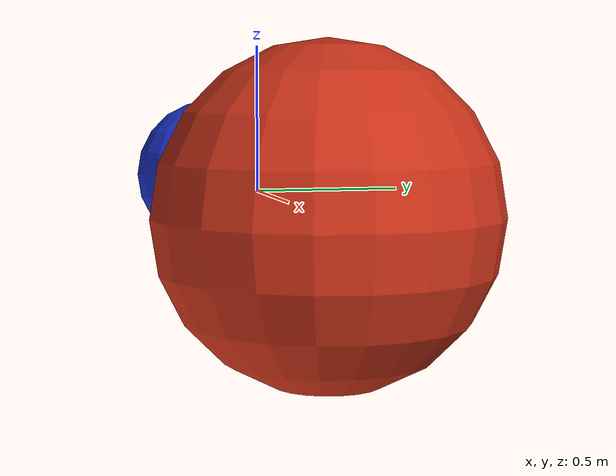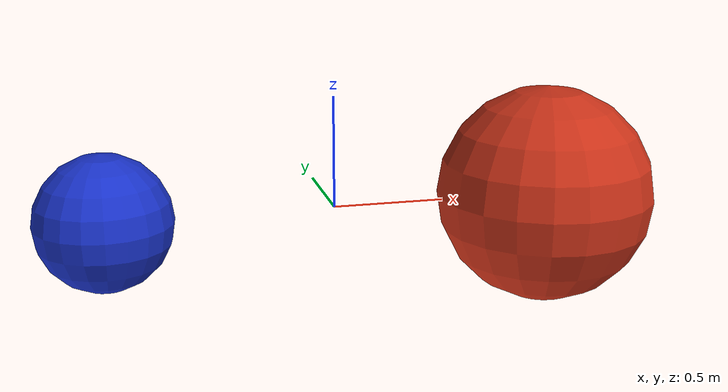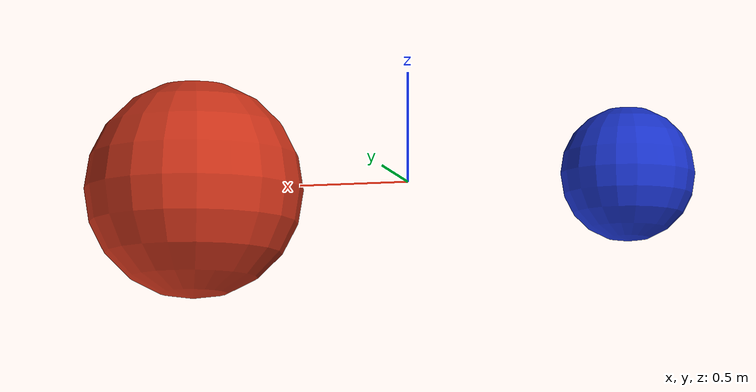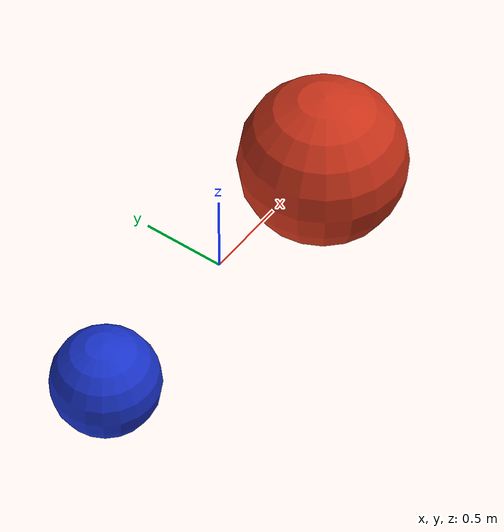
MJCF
<mujoco>
    <option gravity="0 0 0"/>

    <worldbody>
        <light diffuse=".5 .5 .5" pos="0 0 3" dir="0 0 -1"/>
        <body name="sphere1" pos="1 0 0">
            <joint type="free"/>
            <geom type="sphere" size="0.5" mass="5.0" rgba=".8 .2 .1 1"/>
        </body>
        <body name="sphere2" pos="-1 0 0">
            <joint type="free"/>
            <geom type="sphere" size="0.3" mass="3.0" rgba=".1 .2 .8 1"/>
        </body>
    </worldbody>

    <custom>
        <numeric name="G" data="6.67430e-11"/>
    </custom>

    <sensor>
        <framepos objtype="body" objname="sphere1"/>
        <framepos objtype="body" objname="sphere2"/>
    </sensor>
</mujoco>
